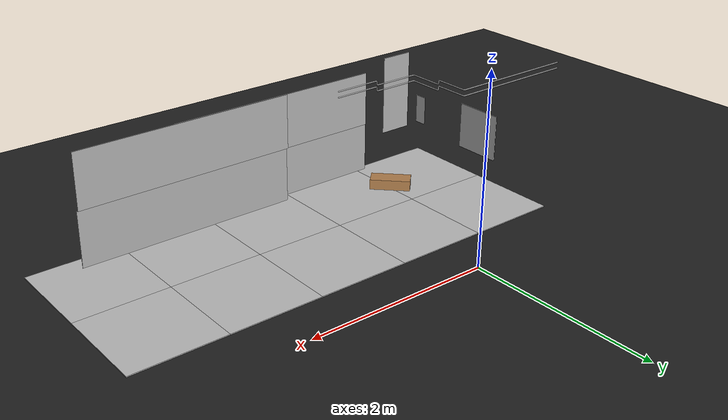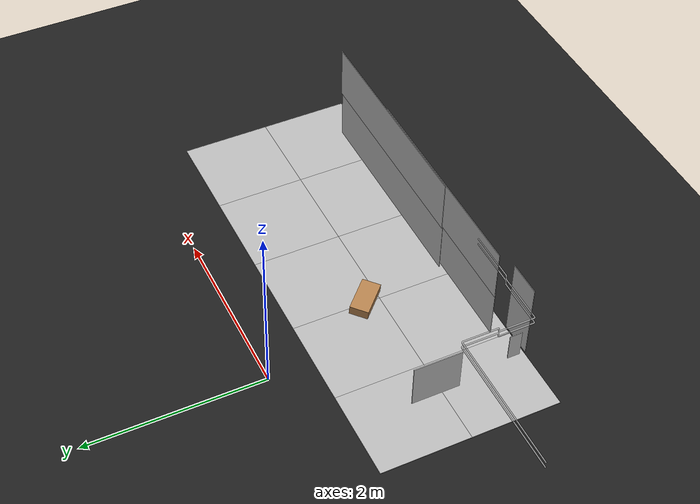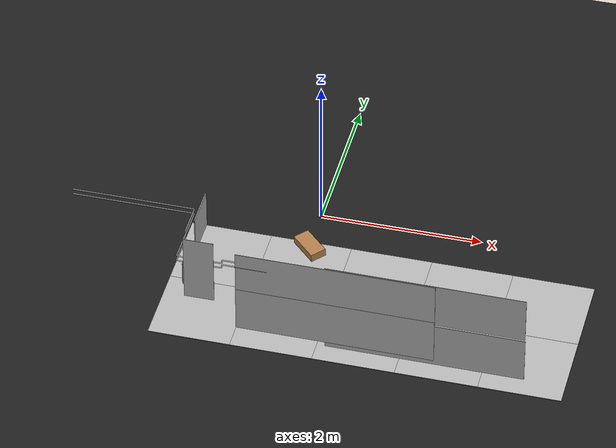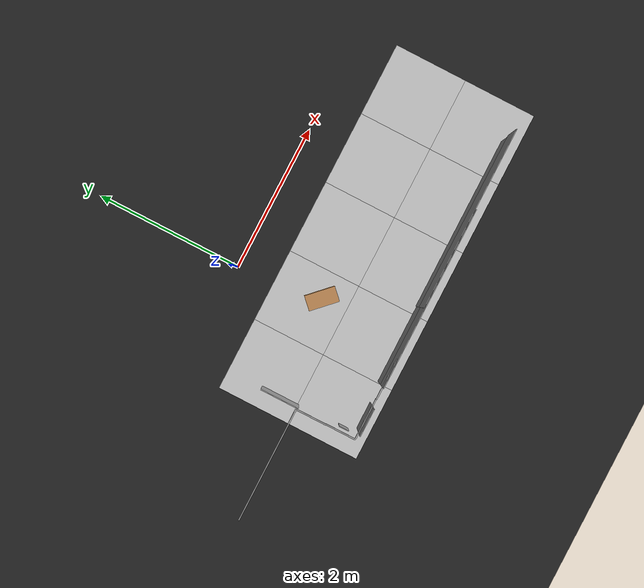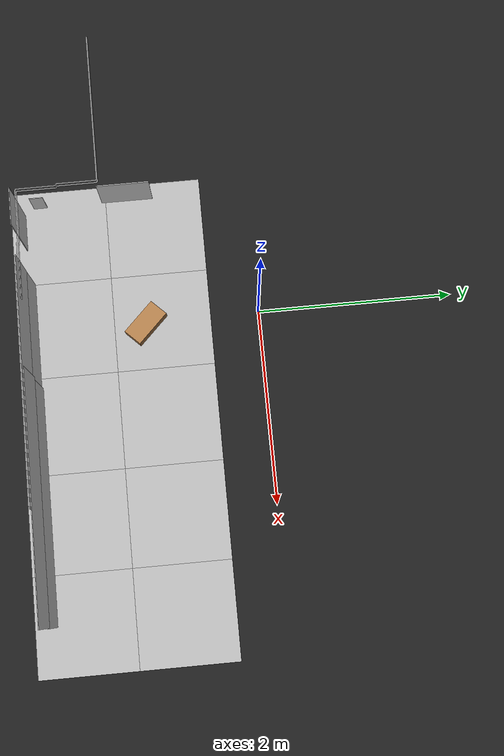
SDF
<sdf version="1.4">
 <world name="default">
  <light name="sun" type="directional">
   <pose>-1 -1 1.5 0 -0 0</pose>
   <diffuse>0.8 0.8 0.8 1</diffuse>
   <specular>0.2 0.2 0.2 1</specular>
   <attenuation>
    <range>1000</range>
    <constant>0.9</constant>
    <linear>0.01</linear>
    <quadratic>0.001</quadratic>
   </attenuation>
   <direction>-0.5 0 -1</direction>
  </light>
  <model name="ground_plane">
   <static>1</static>
   <link name="link">
    <collision name="collision">
     <geometry><plane><normal>0 0 1</normal><size>100 100</size></plane></geometry>
     <surface><friction><ode><mu>100</mu><mu2>50</mu2></ode></friction></surface>
    </collision>
    <visual name="visual">
     <cast_shadows>0</cast_shadows>
     <geometry><plane><normal>0 0 1</normal><size>100 100</size></plane></geometry>
     <material>
      <script><uri>file://media/materials/scripts/gazebo.material</uri><name>Gazebo/Black</name></script>
     </material>
    </visual>
    <velocity_decay><linear>0</linear><angular>0</angular></velocity_decay>
    <gravity>0</gravity>
   </link>
  </model>
  <physics type="ode">
   <max_step_size>0.1</max_step_size>
   <real_time_factor>1</real_time_factor>
   <real_time_update_rate>10</real_time_update_rate>
   <max_contacts>3</max_contacts>
   <gravity>0 0 -9.8</gravity>
   <ode><solver><min_step_size>0.1</min_step_size><iters>1</iters></solver></ode>
  </physics>
  <scene><ambient>1 1 1 1</ambient><background>0 0 0 1</background><shadows>1</shadows></scene>
  <model name="fire_hose_reel">
   <static>1</static>
   <link name="link">
    <visual name="visual">
     <geometry><box><size>0.8815 0.366 0.007</size></box></geometry>
     <material>
      <script>
       <uri>model://fire_hose_reel/materials/scripts</uri>
       <uri>model://fire_hose_reel/materials/textures</uri>
       <name>fire_hose_reel</name>
      </script>
     </material>
    </visual>
    <velocity_decay><linear>0</linear><angular>0</angular></velocity_decay>
    <gravity>0</gravity>
   </link>
   <pose>-0.918419 -2.27758 0.90672 -3.12259 -1.57079 1.55207</pose>
  </model>
  <model name="fire_extinguisher_drawing">
   <pose>-1.14742 -2.10539 0.702922 -0.000425 -1.5707 -3.1415</pose>
   <static>1</static>
   <link name="link">
    <visual name="visual">
     <cast_shadows>0</cast_shadows>
     <geometry><box><size>0.315 0.135 0.007</size></box></geometry>
     <material>
      <script>
       <uri>model://fire_extinguisher_drawing/materials/scripts</uri>
       <uri>model://fire_extinguisher_drawing/materials/textures</uri>
       <name>fire_extinguisher_drawing</name>
      </script>
     </material>
    </visual>
    <velocity_decay><linear>0</linear><angular>0</angular></velocity_decay>
   </link>
  </model>
  <model name="wall_pipe">
   <pose>-2.68572 -1.4638 1.05 -1.5707 5.55112e-17 -1.5707</pose>
   <static>1</static>
   <link name="link">
    <inertial><mass>10</mass></inertial>
    <visual name="visual">
     <transparency>0.2</transparency>
     <geometry><mesh><uri>model://wall_pipe/meshes/wall_pipe.stl</uri></mesh></geometry>
    </visual>
    <velocity_decay><linear>0</linear><angular>0</angular></velocity_decay>
   </link>
  </model>
  <model name="wall_pipe_2">
   <pose>-2.68364 -1.46266 1.11922 -1.5707 5.55112e-17 -1.5707</pose>
   <static>1</static>
   <link name="link">
    <inertial><mass>10</mass></inertial>
    <visual name="visual">
     <transparency>0.2</transparency>
     <geometry><mesh><uri>model://wall_pipe/meshes/wall_pipe.stl</uri></mesh></geometry>
    </visual>
    <velocity_decay><linear>0</linear><angular>0</angular></velocity_decay>
   </link>
  </model>
  <spherical_coordinates>
   <surface_model>EARTH_WGS84</surface_model>
   <latitude_deg>0</latitude_deg>
   <longitude_deg>0</longitude_deg>
   <elevation>0</elevation>
   <heading_deg>0</heading_deg>
  </spherical_coordinates>
  <model name="camera_projection_mapping">
   <link name="projector_link">
    <inertial>
     <mass>1</mass>
     <inertia><ixx>0.1</ixx><ixy>0</ixy><ixz>0</ixz><iyy>0.1</iyy><iyz>0</iyz><izz>0.1</izz></inertia>
    </inertial>
    <visual name="projector_link_visual">
     <geometry><box><size>0.2 0.1 0.4</size></box></geometry>
     <material><script><name>Gazebo/Wood</name><uri>__default__</uri></script></material>
    </visual>
    <velocity_decay><linear>0</linear><angular>0</angular></velocity_decay>
    <sensor name="virtual_camera" type="camera">
     <camera name="projector_head">
      <horizontal_fov>0.812196</horizontal_fov>
      <image><width>1280</width><height>800</height><format>R8G8B8</format></image>
      <clip><near>0.05</near><far>25</far></clip>
      <noise><type>gaussian</type><mean>0</mean><stddev>0</stddev></noise>
     </camera>
     <plugin name="camera_controller" filename="libgazebo_ros_camera.so">
      <alwaysOn>true</alwaysOn>
      <updateRate>30.0</updateRate>
      <cameraName>virtual_camera</cameraName>
      <imageTopicName>image_raw</imageTopicName>
      <cameraInfoTopicName>camera_info</cameraInfoTopicName>
      <frameName>camera_link</frameName>
      <CxPrime>644</CxPrime>
      <Cx>644</Cx>
      <Cy>630</Cy>
      <focalLength>389</focalLength>
      <hackBaseline>0.07</hackBaseline>
      <distortionK1>0</distortionK1>
      <distortionK2>0</distortionK2>
      <distortionK3>0</distortionK3>
      <distortionT1>0</distortionT1>
      <distortionT2>0</distortionT2>
      <robotNamespace>/</robotNamespace>
     </plugin>
    </sensor>
   </link>
   <static>1</static>
   <pose>0.14028 -1.13886 0.528 -1.5708 0.07 -2.35448</pose>
  </model>
  <model name="dot_grid">
   <static>1</static>
   <link name="link">
    <visual name="visual">
     <cast_shadows>0</cast_shadows>
     <geometry><box><size>2.4 0.6 0.007</size></box></geometry>
     <material>
      <script>
       <uri>model://dot_grid/materials/scripts</uri>
       <uri>model://dot_grid/materials/textures</uri>
       <name>dot_grid</name>
      </script>
     </material>
    </visual>
    <velocity_decay><linear>0</linear><angular>0</angular></velocity_decay>
   </link>
   <pose>0.724843 -2.27469 0.937561 -1.57495 0 0</pose>
  </model>
  <model name="dot_grid_0">
   <static>1</static>
   <link name="link">
    <visual name="visual">
     <cast_shadows>0</cast_shadows>
     <geometry><box><size>2.4 0.6 0.007</size></box></geometry>
     <material>
      <script>
       <uri>model://dot_grid/materials/scripts</uri>
       <uri>model://dot_grid/materials/textures</uri>
       <name>dot_grid</name>
      </script>
     </material>
    </visual>
    <velocity_decay><linear>0</linear><angular>0</angular></velocity_decay>
   </link>
   <pose>1.79937 -2.25873 0.939824 -1.5693 0 0</pose>
  </model>
  <model name="dot_grid_1">
   <static>1</static>
   <link name="link">
    <visual name="visual">
     <cast_shadows>0</cast_shadows>
     <geometry><box><size>2.4 0.6 0.007</size></box></geometry>
     <material>
      <script>
       <uri>model://dot_grid/materials/scripts</uri>
       <uri>model://dot_grid/materials/textures</uri>
       <name>dot_grid</name>
      </script>
     </material>
    </visual>
    <velocity_decay><linear>0</linear><angular>0</angular></velocity_decay>
   </link>
   <pose>0.723793 -2.27867 0.395863 -1.57154 0 0</pose>
  </model>
  <model name="dot_grid_2">
   <static>1</static>
   <link name="link">
    <visual name="visual">
     <cast_shadows>0</cast_shadows>
     <geometry><box><size>2.4 0.6 0.007</size></box></geometry>
     <material>
      <script>
       <uri>model://dot_grid/materials/scripts</uri>
       <uri>model://dot_grid/materials/textures</uri>
       <name>dot_grid</name>
      </script>
     </material>
    </visual>
    <velocity_decay><linear>0</linear><angular>0</angular></velocity_decay>
   </link>
   <pose>1.80669 -2.27427 0.332731 -1.56858 0 0</pose>
  </model>
  <model name="floor_3">
   <static>1</static>
   <link name="link">
    <visual name="visual">
     <cast_shadows>0</cast_shadows>
     <geometry><box><size>1 1 0.01</size></box></geometry>
     <material>
      <script>
       <uri>model://floor/materials/scripts</uri>
       <uri>model://floor/materials/textures</uri>
       <name>floor</name>
      </script>
     </material>
    </visual>
    <velocity_decay><linear>0</linear><angular>0</angular></velocity_decay>
   </link>
   <pose>3 -2 0 0 -0 0</pose>
  </model>
  <model name="floor_4">
   <static>1</static>
   <link name="link">
    <visual name="visual">
     <cast_shadows>0</cast_shadows>
     <geometry><box><size>1 1 0.01</size></box></geometry>
     <material>
      <script>
       <uri>model://floor/materials/scripts</uri>
       <uri>model://floor/materials/textures</uri>
       <name>floor</name>
      </script>
     </material>
    </visual>
    <velocity_decay><linear>0</linear><angular>0</angular></velocity_decay>
   </link>
   <pose>2 -2 0 0 -0 0</pose>
  </model>
  <model name="floor_5">
   <static>1</static>
   <link name="link">
    <visual name="visual">
     <cast_shadows>0</cast_shadows>
     <geometry><box><size>1 1 0.01</size></box></geometry>
     <material>
      <script>
       <uri>model://floor/materials/scripts</uri>
       <uri>model://floor/materials/textures</uri>
       <name>floor</name>
      </script>
     </material>
    </visual>
    <velocity_decay><linear>0</linear><angular>0</angular></velocity_decay>
   </link>
   <pose>3 -1 0 0 -0 0</pose>
  </model>
  <model name="floor_7">
   <static>1</static>
   <link name="link">
    <visual name="visual">
     <cast_shadows>0</cast_shadows>
     <geometry><box><size>1 1 0.01</size></box></geometry>
     <material>
      <script>
       <uri>model://floor/materials/scripts</uri>
       <uri>model://floor/materials/textures</uri>
       <name>floor</name>
      </script>
     </material>
    </visual>
    <velocity_decay><linear>0</linear><angular>0</angular></velocity_decay>
   </link>
   <pose>2 -1 0 0 -0 0</pose>
  </model>
  <model name="floor_8">
   <static>1</static>
   <link name="link">
    <visual name="visual">
     <cast_shadows>0</cast_shadows>
     <geometry><box><size>1 1 0.01</size></box></geometry>
     <material>
      <script>
       <uri>model://floor/materials/scripts</uri>
       <uri>model://floor/materials/textures</uri>
       <name>floor</name>
      </script>
     </material>
    </visual>
    <velocity_decay><linear>0</linear><angular>0</angular></velocity_decay>
   </link>
   <pose>1 -1 0 0 -0 0</pose>
  </model>
  <model name="floor_9">
   <static>1</static>
   <link name="link">
    <visual name="visual">
     <cast_shadows>0</cast_shadows>
     <geometry><box><size>1 1 0.01</size></box></geometry>
     <material>
      <script>
       <uri>model://floor/materials/scripts</uri>
       <uri>model://floor/materials/textures</uri>
       <name>floor</name>
      </script>
     </material>
    </visual>
    <velocity_decay><linear>0</linear><angular>0</angular></velocity_decay>
   </link>
   <pose>1 -2 0 0 -0 0</pose>
  </model>
  <model name="floor_10">
   <static>1</static>
   <link name="link">
    <visual name="visual">
     <cast_shadows>0</cast_shadows>
     <geometry><box><size>1 1 0.01</size></box></geometry>
     <material>
      <script>
       <uri>model://floor/materials/scripts</uri>
       <uri>model://floor/materials/textures</uri>
       <name>floor</name>
      </script>
     </material>
    </visual>
    <velocity_decay><linear>0</linear><angular>0</angular></velocity_decay>
   </link>
   <pose>0 -2 0 0 -0 0</pose>
  </model>
  <model name="floor_11">
   <static>1</static>
   <link name="link">
    <visual name="visual">
     <cast_shadows>0</cast_shadows>
     <geometry><box><size>1 1 0.01</size></box></geometry>
     <material>
      <script>
       <uri>model://floor/materials/scripts</uri>
       <uri>model://floor/materials/textures</uri>
       <name>floor</name>
      </script>
     </material>
    </visual>
    <velocity_decay><linear>0</linear><angular>0</angular></velocity_decay>
   </link>
   <pose>0 -1 0 0 -0 0</pose>
  </model>
  <model name="floor_12">
   <static>1</static>
   <link name="link">
    <visual name="visual">
     <cast_shadows>0</cast_shadows>
     <geometry><box><size>1 1 0.01</size></box></geometry>
     <material>
      <script>
       <uri>model://floor/materials/scripts</uri>
       <uri>model://floor/materials/textures</uri>
       <name>floor</name>
      </script>
     </material>
    </visual>
    <velocity_decay><linear>0</linear><angular>0</angular></velocity_decay>
   </link>
   <pose>-1 -2 0 0 -0 0</pose>
  </model>
  <model name="floor_13">
   <static>1</static>
   <link name="link">
    <visual name="visual">
     <cast_shadows>0</cast_shadows>
     <geometry><box><size>1 1 0.01</size></box></geometry>
     <material>
      <script>
       <uri>model://floor/materials/scripts</uri>
       <uri>model://floor/materials/textures</uri>
       <name>floor</name>
      </script>
     </material>
    </visual>
    <velocity_decay><linear>0</linear><angular>0</angular></velocity_decay>
   </link>
   <pose>-1 -1 0 0 -0 0</pose>
  </model>
  <model name="electric_panel">
   <static>1</static>
   <link name="link">
    <visual name="visual">
     <cast_shadows>0</cast_shadows>
     <geometry><box><size>0.5 0.516 0.01</size></box></geometry>
     <material>
      <script>
       <uri>model://electric_panel/materials/scripts</uri>
       <uri>model://electric_panel/materials/textures</uri>
       <name>electric_panel</name>
      </script>
     </material>
    </visual>
    <velocity_decay><linear>0</linear><angular>0</angular></velocity_decay>
   </link>
   <pose>-1.18112 -1.23825 0.703571 -3.14159 1.57079 -3e-06</pose>
  </model>
 </world>
</sdf>
